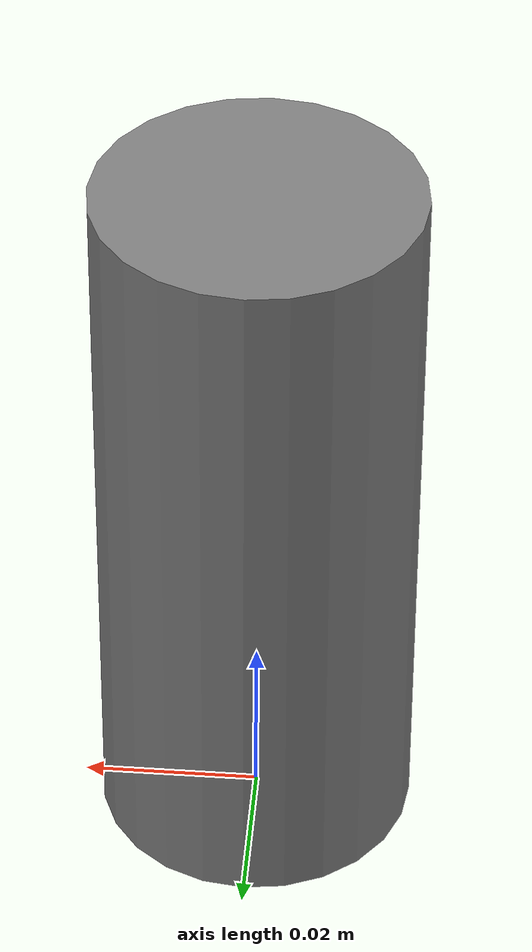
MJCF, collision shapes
<mujoco model="salt">
	<compiler meshdir="assets" texturedir="assets" />
    <asset>
        <mesh name="salt_mesh" file="salt.obj" scale="0.008 0.008 0.008" />
	<texture name="texgeom" type="cube" builtin="gradient" width="128" height="128"
		 rgb1="1 0.1 0.3" rgb2="1 0.7 0.7"/>
	<material name='object' texture="texgeom" texuniform="true"/>
    </asset>

    <default>
        <default class="collision">
            <geom condim="6" group="0" />
        </default>
        <default class="visual">
        	<geom condim="6" conaffinity="0" contype="0" mass="0" gap="10"/>
        </default>
    </default>

    <worldbody>
      <light mode="targetbodycom" target="base_link" directional="false" diffuse=".8 .8 .8" specular="0.3 0.3 0.3" pos="0 0 4.0" dir="0 0 -1" active="false"/>
      <body name="base_link">
        <freejoint name="root" />
        <inertial pos="0 0 0.02" mass="0.085" diaginertia="0.000057 0.000057 0.0000138"/>
        <geom class="collision" name ="collision" friction="1 0.04 0.0001" type="cylinder" size="0.018 0.042" pos="0.0 0.0 0.042"/>
        <geom class="visual" group="1" type="mesh" mesh="salt_mesh" material="object" />
        <geom name ="objectPos" class="visual" group="4" type="sphere" size="0.005"  pos="0.0 0.0 0.03" euler="0 0 0"/>
        <geom name ="grabbingPos1" class="visual" group="4" type="cylinder" size="0.002 0.005"  pos="0.0 0.0 0.03" euler="0 0 0"/>
      </body>
    </worldbody>
</mujoco>
